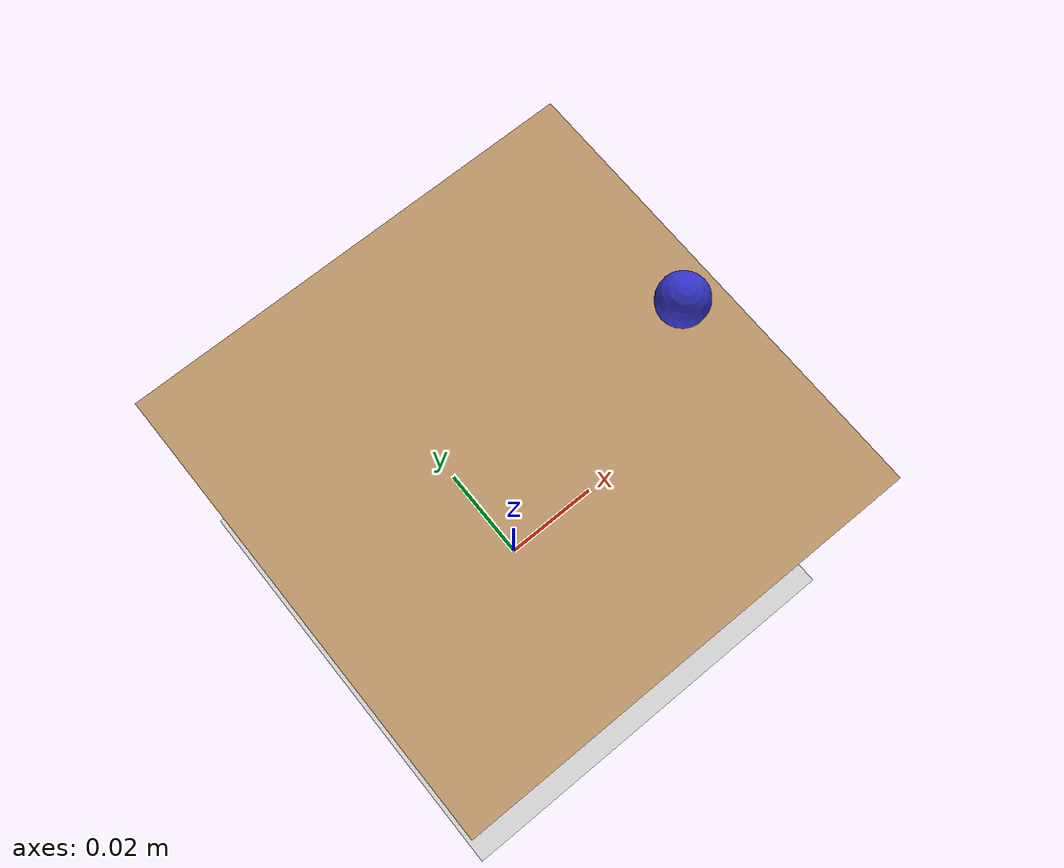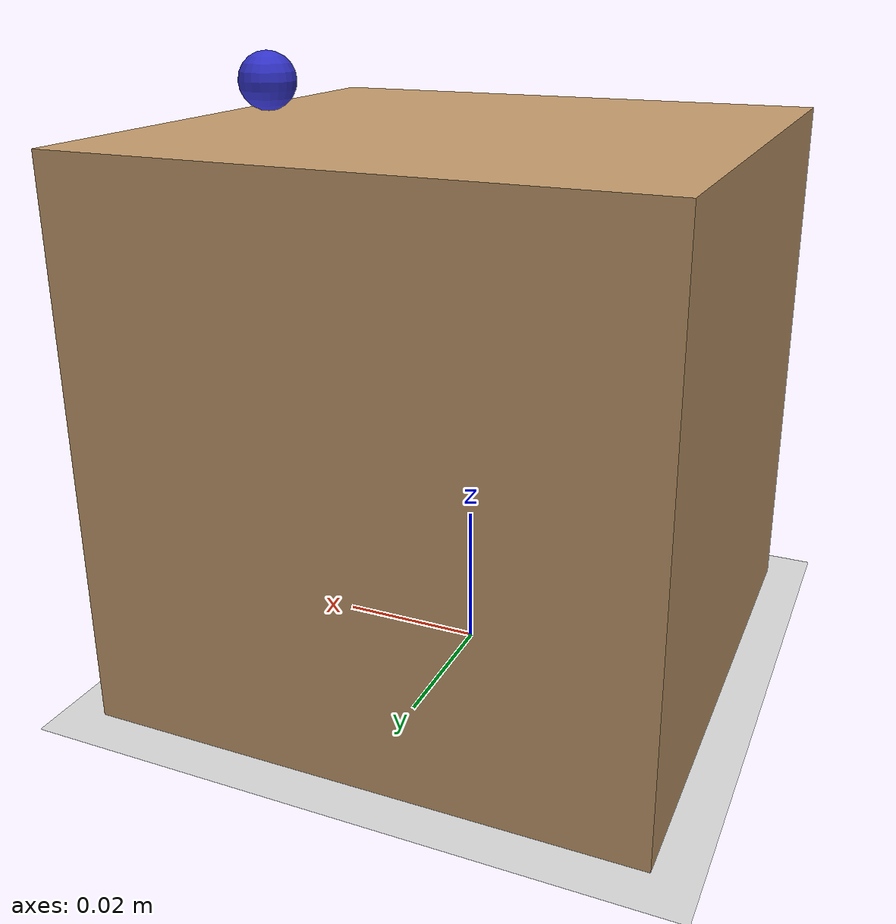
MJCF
<mujoco model="block_tilt">
  <option timestep="0.0005" gravity="0 0 -9.81" cone="elliptic" impratio="10" integrator="implicitfast"/>

  <default>
    <geom friction="0.8 0.005 0.0001" condim="3" solref="0.002 1"/>
    <joint type="slide" armature="0" damping="0"/>
  </default>

  <worldbody>
    <light pos="0 -0.3 0.5" dir="0 0.5 -1"/>
    <geom name="table" type="plane" size="0.2 0.2 0.01" rgba="0.85 0.85 0.85 1"/>

    <body name="block" pos="0 0 0.0375">
      <freejoint name="block"/>
      <geom name="block" type="box" size="0.0375 0.0375 0.0375" density="700" rgba="0.76 0.60 0.42 1"/>
    </body>

    <!-- Finger reference point; the slide joints measure its displacement from here. -->
    <body name="finger" pos="0.03 0 0.0795">
      <joint name="fx" axis="1 0 0" range="-0.1 0.1"/>
      <joint name="fy" axis="0 1 0" range="-0.1 0.1"/>
      <joint name="fz" axis="0 0 1" range="-0.1 0.1"/>
      <geom name="finger" type="sphere" size="0.004" mass="0.1" rgba="0.2 0.2 0.8 1"/>
    </body>
  </worldbody>

  <actuator>
    <motor name="fx" joint="fx" ctrlrange="-200 200" ctrllimited="true"/>
    <motor name="fy" joint="fy" ctrlrange="-200 200" ctrllimited="true"/>
    <motor name="fz" joint="fz" ctrlrange="-200 200" ctrllimited="true"/>
  </actuator>
</mujoco>
